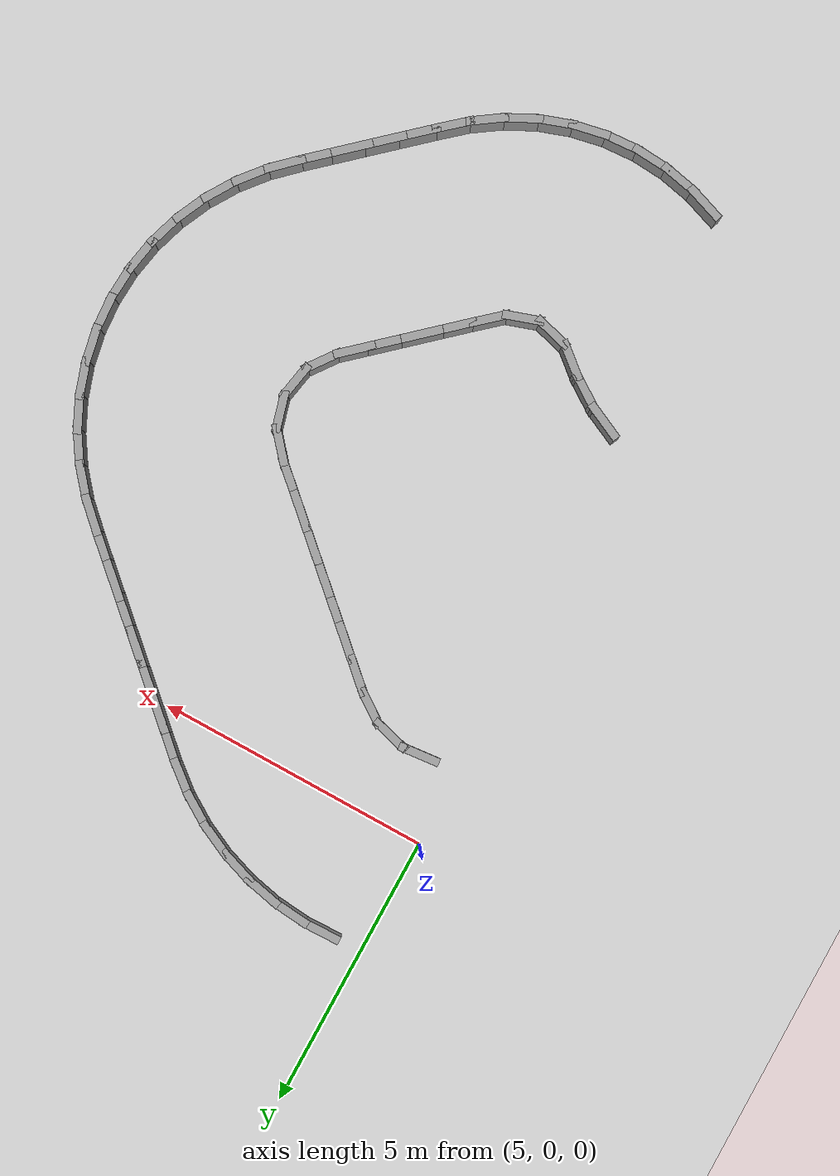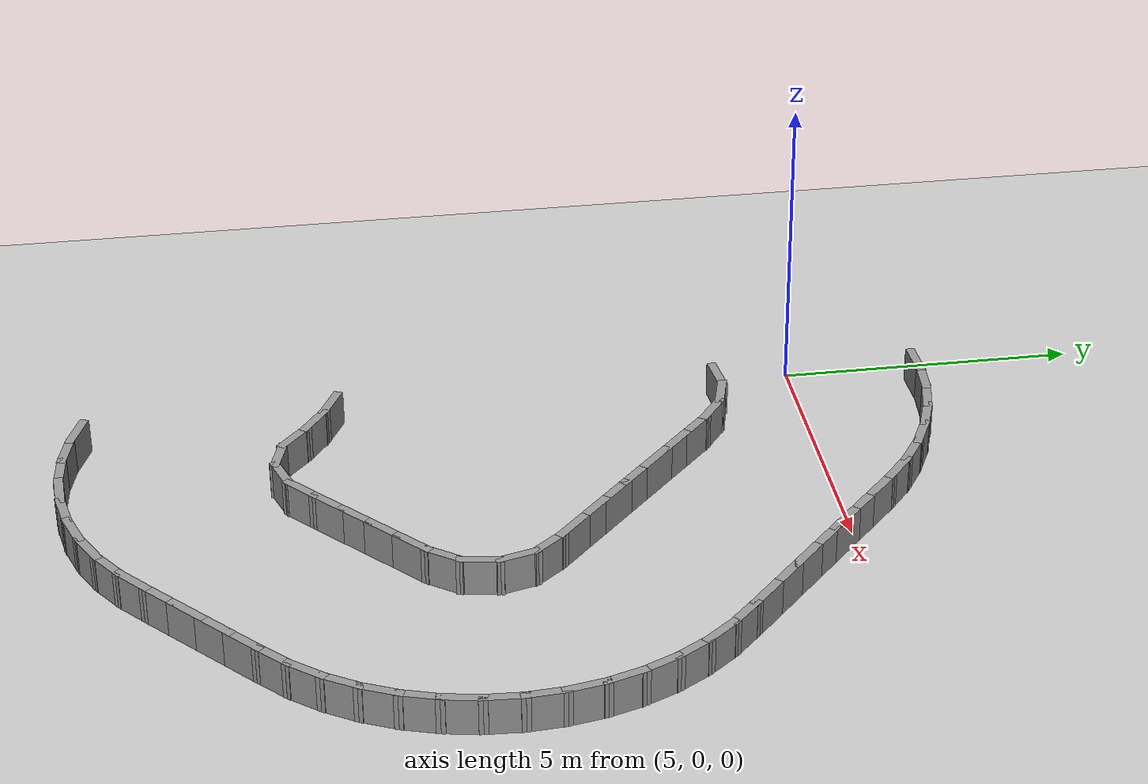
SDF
<sdf version="1.7">
 <world name="default">
  <model name="ground_plane">
   <static>1</static>
   <link name="link">
    <collision name="collision">
     <geometry><plane><normal>0 0 1</normal><size>100 100</size></plane></geometry>
     <surface><friction><ode><mu>100</mu><mu2>50</mu2></ode></friction></surface>
    </collision>
    <visual name="visual">
     <cast_shadows>0</cast_shadows>
     <geometry><plane><normal>0 0 1</normal><size>100 100</size></plane></geometry>
     <material>
      <script><uri>file://media/materials/scripts/gazebo.material</uri><name>Gazebo/Grey</name></script>
     </material>
    </visual>
   </link>
  </model>
  <model name="rand_turn_08">
   <link name="Wall_24">
    <collision name="Wall_24_Collision">
     <geometry><box><size>0.7496 0.1500 0.6000</size></box></geometry>
     <pose>0 0 0.3000 0 -0 0</pose>
    </collision>
    <visual name="Wall_24_Visual">
     <pose>0 0 0.3000 0 -0 0</pose>
     <geometry><box><size>0.7496 0.1500 0.6000</size></box></geometry>
     <material>
      <script><uri>file://media/materials/scripts/gazebo.material</uri><name>Gazebo/Grey</name></script>
      <ambient>1 1 1 1</ambient>
     </material>
    </visual>
    <pose>5.7935 2.0853 0 0 -0 0.02378</pose>
   </link>
   <link name="Wall_25">
    <collision name="Wall_25_Collision">
     <geometry><box><size>0.7496 0.1500 0.6000</size></box></geometry>
     <pose>0 0 0.3000 0 -0 0</pose>
    </collision>
    <visual name="Wall_25_Visual">
     <pose>0 0 0.3000 0 -0 0</pose>
     <geometry><box><size>0.7496 0.1500 0.6000</size></box></geometry>
     <material>
      <script><uri>file://media/materials/scripts/gazebo.material</uri><name>Gazebo/Grey</name></script>
      <ambient>1 1 1 1</ambient>
     </material>
    </visual>
    <pose>6.3917 2.0644 0 0 -0 -0.09374</pose>
   </link>
   <link name="Wall_26">
    <collision name="Wall_26_Collision">
     <geometry><box><size>0.7496 0.1500 0.6000</size></box></geometry>
     <pose>0 0 0.3000 0 -0 0</pose>
    </collision>
    <visual name="Wall_26_Visual">
     <pose>0 0 0.3000 0 -0 0</pose>
     <geometry><box><size>0.7496 0.1500 0.6000</size></box></geometry>
     <material>
      <script><uri>file://media/materials/scripts/gazebo.material</uri><name>Gazebo/Grey</name></script>
      <ambient>1 1 1 1</ambient>
     </material>
    </visual>
    <pose>6.9834 1.9735 0 0 -0 -0.21125</pose>
   </link>
   <link name="Wall_27">
    <collision name="Wall_27_Collision">
     <geometry><box><size>0.7496 0.1500 0.6000</size></box></geometry>
     <pose>0 0 0.3000 0 -0 0</pose>
    </collision>
    <visual name="Wall_27_Visual">
     <pose>0 0 0.3000 0 -0 0</pose>
     <geometry><box><size>0.7496 0.1500 0.6000</size></box></geometry>
     <material>
      <script><uri>file://media/materials/scripts/gazebo.material</uri><name>Gazebo/Grey</name></script>
      <ambient>1 1 1 1</ambient>
     </material>
    </visual>
    <pose>7.5602 1.8138 0 0 -0 -0.32876</pose>
   </link>
   <link name="Wall_28">
    <collision name="Wall_28_Collision">
     <geometry><box><size>0.7496 0.1500 0.6000</size></box></geometry>
     <pose>0 0 0.3000 0 -0 0</pose>
    </collision>
    <visual name="Wall_28_Visual">
     <pose>0 0 0.3000 0 -0 0</pose>
     <geometry><box><size>0.7496 0.1500 0.6000</size></box></geometry>
     <material>
      <script><uri>file://media/materials/scripts/gazebo.material</uri><name>Gazebo/Grey</name></script>
      <ambient>1 1 1 1</ambient>
     </material>
    </visual>
    <pose>8.1144 1.5876 0 0 -0 -0.44628</pose>
   </link>
   <link name="Wall_29">
    <collision name="Wall_29_Collision">
     <geometry><box><size>0.7496 0.1500 0.6000</size></box></geometry>
     <pose>0 0 0.3000 0 -0 0</pose>
    </collision>
    <visual name="Wall_29_Visual">
     <pose>0 0 0.3000 0 -0 0</pose>
     <geometry><box><size>0.7496 0.1500 0.6000</size></box></geometry>
     <material>
      <script><uri>file://media/materials/scripts/gazebo.material</uri><name>Gazebo/Grey</name></script>
      <ambient>1 1 1 1</ambient>
     </material>
    </visual>
    <pose>8.6383 1.2980 0 0 -0 -0.56379</pose>
   </link>
   <link name="Wall_30">
    <collision name="Wall_30_Collision">
     <geometry><box><size>0.7496 0.1500 0.6000</size></box></geometry>
     <pose>0 0 0.3000 0 -0 0</pose>
    </collision>
    <visual name="Wall_30_Visual">
     <pose>0 0 0.3000 0 -0 0</pose>
     <geometry><box><size>0.7496 0.1500 0.6000</size></box></geometry>
     <material>
      <script><uri>file://media/materials/scripts/gazebo.material</uri><name>Gazebo/Grey</name></script>
      <ambient>1 1 1 1</ambient>
     </material>
    </visual>
    <pose>9.1247 0.9491 0 0 -0 -0.68079</pose>
   </link>
   <link name="Wall_31">
    <collision name="Wall_31_Collision">
     <geometry><box><size>0.7500 0.1500 0.6000</size></box></geometry>
     <pose>0 0 0.3000 0 -0 0</pose>
    </collision>
    <visual name="Wall_31_Visual">
     <pose>0 0 0.3000 0 -0 0</pose>
     <geometry><box><size>0.7500 0.1500 0.6000</size></box></geometry>
     <material>
      <script><uri>file://media/materials/scripts/gazebo.material</uri><name>Gazebo/Grey</name></script>
      <ambient>1 1 1 1</ambient>
     </material>
    </visual>
    <pose>9.5798 0.5588 0 0 -0 -0.73675</pose>
   </link>
   <link name="Wall_32">
    <collision name="Wall_32_Collision">
     <geometry><box><size>0.7500 0.1500 0.6000</size></box></geometry>
     <pose>0 0 0.3000 0 -0 0</pose>
    </collision>
    <visual name="Wall_32_Visual">
     <pose>0 0 0.3000 0 -0 0</pose>
     <geometry><box><size>0.7500 0.1500 0.6000</size></box></geometry>
     <material>
      <script><uri>file://media/materials/scripts/gazebo.material</uri><name>Gazebo/Grey</name></script>
      <ambient>1 1 1 1</ambient>
     </material>
    </visual>
    <pose>10.0242 0.1556 0 0 -0 -0.73684</pose>
   </link>
   <link name="Wall_33">
    <collision name="Wall_33_Collision">
     <geometry><box><size>0.7500 0.1500 0.6000</size></box></geometry>
     <pose>0 0 0.3000 0 -0 0</pose>
    </collision>
    <visual name="Wall_33_Visual">
     <pose>0 0 0.3000 0 -0 0</pose>
     <geometry><box><size>0.7500 0.1500 0.6000</size></box></geometry>
     <material>
      <script><uri>file://media/materials/scripts/gazebo.material</uri><name>Gazebo/Grey</name></script>
      <ambient>1 1 1 1</ambient>
     </material>
    </visual>
    <pose>10.4686 -0.2475 0 0 -0 -0.73684</pose>
   </link>
   <link name="Wall_34">
    <collision name="Wall_34_Collision">
     <geometry><box><size>0.7500 0.1500 0.6000</size></box></geometry>
     <pose>0 0 0.3000 0 -0 0</pose>
    </collision>
    <visual name="Wall_34_Visual">
     <pose>0 0 0.3000 0 -0 0</pose>
     <geometry><box><size>0.7500 0.1500 0.6000</size></box></geometry>
     <material>
      <script><uri>file://media/materials/scripts/gazebo.material</uri><name>Gazebo/Grey</name></script>
      <ambient>1 1 1 1</ambient>
     </material>
    </visual>
    <pose>10.9129 -0.6507 0 0 -0 -0.73684</pose>
   </link>
   <link name="Wall_35">
    <collision name="Wall_35_Collision">
     <geometry><box><size>0.7500 0.1500 0.6000</size></box></geometry>
     <pose>0 0 0.3000 0 -0 0</pose>
    </collision>
    <visual name="Wall_35_Visual">
     <pose>0 0 0.3000 0 -0 0</pose>
     <geometry><box><size>0.7500 0.1500 0.6000</size></box></geometry>
     <material>
      <script><uri>file://media/materials/scripts/gazebo.material</uri><name>Gazebo/Grey</name></script>
      <ambient>1 1 1 1</ambient>
     </material>
    </visual>
    <pose>11.3573 -1.0539 0 0 -0 -0.73684</pose>
   </link>
   <link name="Wall_36">
    <collision name="Wall_36_Collision">
     <geometry><box><size>0.7500 0.1500 0.6000</size></box></geometry>
     <pose>0 0 0.3000 0 -0 0</pose>
    </collision>
    <visual name="Wall_36_Visual">
     <pose>0 0 0.3000 0 -0 0</pose>
     <geometry><box><size>0.7500 0.1500 0.6000</size></box></geometry>
     <material>
      <script><uri>file://media/materials/scripts/gazebo.material</uri><name>Gazebo/Grey</name></script>
      <ambient>1 1 1 1</ambient>
     </material>
    </visual>
    <pose>11.8016 -1.4570 0 0 -0 -0.73684</pose>
   </link>
   <link name="Wall_37">
    <collision name="Wall_37_Collision">
     <geometry><box><size>0.7500 0.1500 0.6000</size></box></geometry>
     <pose>0 0 0.3000 0 -0 0</pose>
    </collision>
    <visual name="Wall_37_Visual">
     <pose>0 0 0.3000 0 -0 0</pose>
     <geometry><box><size>0.7500 0.1500 0.6000</size></box></geometry>
     <material>
      <script><uri>file://media/materials/scripts/gazebo.material</uri><name>Gazebo/Grey</name></script>
      <ambient>1 1 1 1</ambient>
     </material>
    </visual>
    <pose>12.2460 -1.8602 0 0 -0 -0.73684</pose>
   </link>
   <link name="Wall_38">
    <collision name="Wall_38_Collision">
     <geometry><box><size>0.7498 0.1500 0.6000</size></box></geometry>
     <pose>0 0 0.3000 0 -0 0</pose>
    </collision>
    <visual name="Wall_38_Visual">
     <pose>0 0 0.3000 0 -0 0</pose>
     <geometry><box><size>0.7498 0.1500 0.6000</size></box></geometry>
     <material>
      <script><uri>file://media/materials/scripts/gazebo.material</uri><name>Gazebo/Grey</name></script>
      <ambient>1 1 1 1</ambient>
     </material>
    </visual>
    <pose>12.6856 -2.2684 0 0 -0 -0.75972</pose>
   </link>
   <link name="Wall_39">
    <collision name="Wall_39_Collision">
     <geometry><box><size>0.7496 0.1500 0.6000</size></box></geometry>
     <pose>0 0 0.3000 0 -0 0</pose>
    </collision>
    <visual name="Wall_39_Visual">
     <pose>0 0 0.3000 0 -0 0</pose>
     <geometry><box><size>0.7496 0.1500 0.6000</size></box></geometry>
     <material>
      <script><uri>file://media/materials/scripts/gazebo.material</uri><name>Gazebo/Grey</name></script>
      <ambient>1 1 1 1</ambient>
     </material>
    </visual>
    <pose>13.0955 -2.7048 0 0 -0 -0.87392</pose>
   </link>
   <link name="Wall_40">
    <collision name="Wall_40_Collision">
     <geometry><box><size>0.7496 0.1500 0.6000</size></box></geometry>
     <pose>0 0 0.3000 0 -0 0</pose>
    </collision>
    <visual name="Wall_40_Visual">
     <pose>0 0 0.3000 0 -0 0</pose>
     <geometry><box><size>0.7496 0.1500 0.6000</size></box></geometry>
     <material>
      <script><uri>file://media/materials/scripts/gazebo.material</uri><name>Gazebo/Grey</name></script>
      <ambient>1 1 1 1</ambient>
     </material>
    </visual>
    <pose>13.4498 -3.1870 0 0 -0 -1.00021</pose>
   </link>
   <link name="Wall_41">
    <collision name="Wall_41_Collision">
     <geometry><box><size>0.7496 0.1500 0.6000</size></box></geometry>
     <pose>0 0 0.3000 0 -0 0</pose>
    </collision>
    <visual name="Wall_41_Visual">
     <pose>0 0 0.3000 0 -0 0</pose>
     <geometry><box><size>0.7496 0.1500 0.6000</size></box></geometry>
     <material>
      <script><uri>file://media/materials/scripts/gazebo.material</uri><name>Gazebo/Grey</name></script>
      <ambient>1 1 1 1</ambient>
     </material>
    </visual>
    <pose>13.7405 -3.7101 0 0 -0 -1.12687</pose>
   </link>
   <link name="Wall_42">
    <collision name="Wall_42_Collision">
     <geometry><box><size>0.7496 0.1500 0.6000</size></box></geometry>
     <pose>0 0 0.3000 0 -0 0</pose>
    </collision>
    <visual name="Wall_42_Visual">
     <pose>0 0 0.3000 0 -0 0</pose>
     <geometry><box><size>0.7496 0.1500 0.6000</size></box></geometry>
     <material>
      <script><uri>file://media/materials/scripts/gazebo.material</uri><name>Gazebo/Grey</name></script>
      <ambient>1 1 1 1</ambient>
     </material>
    </visual>
    <pose>13.9630 -4.2655 0 0 -0 -1.25264</pose>
   </link>
   <link name="Wall_43">
    <collision name="Wall_43_Collision">
     <geometry><box><size>0.7495 0.1500 0.6000</size></box></geometry>
     <pose>0 0 0.3000 0 -0 0</pose>
    </collision>
    <visual name="Wall_43_Visual">
     <pose>0 0 0.3000 0 -0 0</pose>
     <geometry><box><size>0.7495 0.1500 0.6000</size></box></geometry>
     <material>
      <script><uri>file://media/materials/scripts/gazebo.material</uri><name>Gazebo/Grey</name></script>
      <ambient>1 1 1 1</ambient>
     </material>
    </visual>
    <pose>14.1141 -4.8445 0 0 -0 -1.37841</pose>
   </link>
   <link name="Wall_44">
    <collision name="Wall_44_Collision">
     <geometry><box><size>0.7496 0.1500 0.6000</size></box></geometry>
     <pose>0 0 0.3000 0 -0 0</pose>
    </collision>
    <visual name="Wall_44_Visual">
     <pose>0 0 0.3000 0 -0 0</pose>
     <geometry><box><size>0.7496 0.1500 0.6000</size></box></geometry>
     <material>
      <script><uri>file://media/materials/scripts/gazebo.material</uri><name>Gazebo/Grey</name></script>
      <ambient>1 1 1 1</ambient>
     </material>
    </visual>
    <pose>14.1914 -5.4379 0 0 -0 -1.50417</pose>
   </link>
   <link name="Wall_45">
    <collision name="Wall_45_Collision">
     <geometry><box><size>0.7496 0.1500 0.6000</size></box></geometry>
     <pose>0 0 0.3000 0 -0 0</pose>
    </collision>
    <visual name="Wall_45_Visual">
     <pose>0 0 0.3000 0 -0 0</pose>
     <geometry><box><size>0.7496 0.1500 0.6000</size></box></geometry>
     <material>
      <script><uri>file://media/materials/scripts/gazebo.material</uri><name>Gazebo/Grey</name></script>
      <ambient>1 1 1 1</ambient>
     </material>
    </visual>
    <pose>14.1936 -6.0362 0 0 -0 -1.62994</pose>
   </link>
   <link name="Wall_46">
    <collision name="Wall_46_Collision">
     <geometry><box><size>0.7496 0.1500 0.6000</size></box></geometry>
     <pose>0 0 0.3000 0 -0 0</pose>
    </collision>
    <visual name="Wall_46_Visual">
     <pose>0 0 0.3000 0 -0 0</pose>
     <geometry><box><size>0.7496 0.1500 0.6000</size></box></geometry>
     <material>
      <script><uri>file://media/materials/scripts/gazebo.material</uri><name>Gazebo/Grey</name></script>
      <ambient>1 1 1 1</ambient>
     </material>
    </visual>
    <pose>14.1207 -6.6302 0 0 -0 -1.75612</pose>
   </link>
   <link name="Wall_47">
    <collision name="Wall_47_Collision">
     <geometry><box><size>0.7496 0.1500 0.6000</size></box></geometry>
     <pose>0 0 0.3000 0 -0 0</pose>
    </collision>
    <visual name="Wall_47_Visual">
     <pose>0 0 0.3000 0 -0 0</pose>
     <geometry><box><size>0.7496 0.1500 0.6000</size></box></geometry>
     <material>
      <script><uri>file://media/materials/scripts/gazebo.material</uri><name>Gazebo/Grey</name></script>
      <ambient>1 1 1 1</ambient>
     </material>
    </visual>
    <pose>13.9734 -7.2102 0 0 -0 -1.88289</pose>
   </link>
   <link name="Wall_48">
    <collision name="Wall_48_Collision">
     <geometry><box><size>0.7496 0.1500 0.6000</size></box></geometry>
     <pose>0 0 0.3000 0 -0 0</pose>
    </collision>
    <visual name="Wall_48_Visual">
     <pose>0 0 0.3000 0 -0 0</pose>
     <geometry><box><size>0.7496 0.1500 0.6000</size></box></geometry>
     <material>
      <script><uri>file://media/materials/scripts/gazebo.material</uri><name>Gazebo/Grey</name></script>
      <ambient>1 1 1 1</ambient>
     </material>
    </visual>
    <pose>13.7542 -7.7670 0 0 -0 -2.00865</pose>
   </link>
   <link name="Wall_49">
    <collision name="Wall_49_Collision">
     <geometry><box><size>0.7495 0.1500 0.6000</size></box></geometry>
     <pose>0 0 0.3000 0 -0 0</pose>
    </collision>
    <visual name="Wall_49_Visual">
     <pose>0 0 0.3000 0 -0 0</pose>
     <geometry><box><size>0.7495 0.1500 0.6000</size></box></geometry>
     <material>
      <script><uri>file://media/materials/scripts/gazebo.material</uri><name>Gazebo/Grey</name></script>
      <ambient>1 1 1 1</ambient>
     </material>
    </visual>
    <pose>13.4670 -8.2919 0 0 -0 -2.13442</pose>
   </link>
   <link name="Wall_50">
    <collision name="Wall_50_Collision">
     <geometry><box><size>0.7496 0.1500 0.6000</size></box></geometry>
     <pose>0 0 0.3000 0 -0 0</pose>
    </collision>
    <visual name="Wall_50_Visual">
     <pose>0 0 0.3000 0 -0 0</pose>
     <geometry><box><size>0.7496 0.1500 0.6000</size></box></geometry>
     <material>
      <script><uri>file://media/materials/scripts/gazebo.material</uri><name>Gazebo/Grey</name></script>
      <ambient>1 1 1 1</ambient>
     </material>
    </visual>
    <pose>13.1161 -8.7766 0 0 -0 -2.26019</pose>
   </link>
   <link name="Wall_51">
    <collision name="Wall_51_Collision">
     <geometry><box><size>0.7497 0.1500 0.6000</size></box></geometry>
     <pose>0 0 0.3000 0 -0 0</pose>
    </collision>
    <visual name="Wall_51_Visual">
     <pose>0 0 0.3000 0 -0 0</pose>
     <geometry><box><size>0.7497 0.1500 0.6000</size></box></geometry>
     <material>
      <script><uri>file://media/materials/scripts/gazebo.material</uri><name>Gazebo/Grey</name></script>
      <ambient>1 1 1 1</ambient>
     </material>
    </visual>
    <pose>12.7081 -9.2145 0 0 -0 -2.38179</pose>
   </link>
   <link name="Wall_52">
    <collision name="Wall_52_Collision">
     <geometry><box><size>0.7500 0.1500 0.6000</size></box></geometry>
     <pose>0 0 0.3000 0 -0 0</pose>
    </collision>
    <visual name="Wall_52_Visual">
     <pose>0 0 0.3000 0 -0 0</pose>
     <geometry><box><size>0.7500 0.1500 0.6000</size></box></geometry>
     <material>
      <script><uri>file://media/materials/scripts/gazebo.material</uri><name>Gazebo/Grey</name></script>
      <ambient>1 1 1 1</ambient>
     </material>
    </visual>
    <pose>12.2674 -9.6214 0 0 -0 -2.41018</pose>
   </link>
   <link name="Wall_53">
    <collision name="Wall_53_Collision">
     <geometry><box><size>0.7500 0.1500 0.6000</size></box></geometry>
     <pose>0 0 0.3000 0 -0 0</pose>
    </collision>
    <visual name="Wall_53_Visual">
     <pose>0 0 0.3000 0 -0 0</pose>
     <geometry><box><size>0.7500 0.1500 0.6000</size></box></geometry>
     <material>
      <script><uri>file://media/materials/scripts/gazebo.material</uri><name>Gazebo/Grey</name></script>
      <ambient>1 1 1 1</ambient>
     </material>
    </visual>
    <pose>11.8209 -10.0221 0 0 -0 -2.41018</pose>
   </link>
   <link name="Wall_54">
    <collision name="Wall_54_Collision">
     <geometry><box><size>0.7500 0.1500 0.6000</size></box></geometry>
     <pose>0 0 0.3000 0 -0 0</pose>
    </collision>
    <visual name="Wall_54_Visual">
     <pose>0 0 0.3000 0 -0 0</pose>
     <geometry><box><size>0.7500 0.1500 0.6000</size></box></geometry>
     <material>
      <script><uri>file://media/materials/scripts/gazebo.material</uri><name>Gazebo/Grey</name></script>
      <ambient>1 1 1 1</ambient>
     </material>
    </visual>
    <pose>11.3743 -10.4229 0 0 -0 -2.41018</pose>
   </link>
   <link name="Wall_55">
    <collision name="Wall_55_Collision">
     <geometry><box><size>0.7500 0.1500 0.6000</size></box></geometry>
     <pose>0 0 0.3000 0 -0 0</pose>
    </collision>
    <visual name="Wall_55_Visual">
     <pose>0 0 0.3000 0 -0 0</pose>
     <geometry><box><size>0.7500 0.1500 0.6000</size></box></geometry>
     <material>
      <script><uri>file://media/materials/scripts/gazebo.material</uri><name>Gazebo/Grey</name></script>
      <ambient>1 1 1 1</ambient>
     </material>
    </visual>
    <pose>10.9278 -10.8236 0 0 -0 -2.41018</pose>
   </link>
   <link name="Wall_56">
    <collision name="Wall_56_Collision">
     <geometry><box><size>0.7499 0.1500 0.6000</size></box></geometry>
     <pose>0 0 0.3000 0 -0 0</pose>
    </collision>
    <visual name="Wall_56_Visual">
     <pose>0 0 0.3000 0 -0 0</pose>
     <geometry><box><size>0.7499 0.1500 0.6000</size></box></geometry>
     <material>
      <script><uri>file://media/materials/scripts/gazebo.material</uri><name>Gazebo/Grey</name></script>
      <ambient>1 1 1 1</ambient>
     </material>
    </visual>
    <pose>10.4782 -11.2208 0 0 -0 -2.42583</pose>
   </link>
   <link name="Wall_57">
    <collision name="Wall_57_Collision">
     <geometry><box><size>0.7495 0.1500 0.6000</size></box></geometry>
     <pose>0 0 0.3000 0 -0 0</pose>
    </collision>
    <visual name="Wall_57_Visual">
     <pose>0 0 0.3000 0 -0 0</pose>
     <geometry><box><size>0.7495 0.1500 0.6000</size></box></geometry>
     <material>
      <script><uri>file://media/materials/scripts/gazebo.material</uri><name>Gazebo/Grey</name></script>
      <ambient>1 1 1 1</ambient>
     </material>
    </visual>
    <pose>10.0047 -11.5872 0 0 -0 -2.54043</pose>
   </link>
   <link name="Wall_58">
    <collision name="Wall_58_Collision">
     <geometry><box><size>0.7495 0.1500 0.6000</size></box></geometry>
     <pose>0 0 0.3000 0 -0 0</pose>
    </collision>
    <visual name="Wall_58_Visual">
     <pose>0 0 0.3000 0 -0 0</pose>
     <geometry><box><size>0.7495 0.1500 0.6000</size></box></geometry>
     <material>
      <script><uri>file://media/materials/scripts/gazebo.material</uri><name>Gazebo/Grey</name></script>
      <ambient>1 1 1 1</ambient>
     </material>
    </visual>
    <pose>9.4899 -11.8918 0 0 -0 -2.67397</pose>
   </link>
   <link name="Wall_59">
    <collision name="Wall_59_Collision">
     <geometry><box><size>0.7495 0.1500 0.6000</size></box></geometry>
     <pose>0 0 0.3000 0 -0 0</pose>
    </collision>
    <visual name="Wall_59_Visual">
     <pose>0 0 0.3000 0 -0 0</pose>
     <geometry><box><size>0.7495 0.1500 0.6000</size></box></geometry>
     <material>
      <script><uri>file://media/materials/scripts/gazebo.material</uri><name>Gazebo/Grey</name></script>
      <ambient>1 1 1 1</ambient>
     </material>
    </visual>
    <pose>8.9389 -12.1247 0 0 -0 -2.80956</pose>
   </link>
   <link name="Wall_60">
    <collision name="Wall_60_Collision">
     <geometry><box><size>0.7495 0.1500 0.6000</size></box></geometry>
     <pose>0 0 0.3000 0 -0 0</pose>
    </collision>
    <visual name="Wall_60_Visual">
     <pose>0 0 0.3000 0 -0 0</pose>
     <geometry><box><size>0.7495 0.1500 0.6000</size></box></geometry>
     <material>
      <script><uri>file://media/materials/scripts/gazebo.material</uri><name>Gazebo/Grey</name></script>
      <ambient>1 1 1 1</ambient>
     </material>
    </visual>
    <pose>8.3616 -12.2812 0 0 -0 -2.94410</pose>
   </link>
   <link name="Wall_61">
    <collision name="Wall_61_Collision">
     <geometry><box><size>0.7495 0.1500 0.6000</size></box></geometry>
     <pose>0 0 0.3000 0 -0 0</pose>
    </collision>
    <visual name="Wall_61_Visual">
     <pose>0 0 0.3000 0 -0 0</pose>
     <geometry><box><size>0.7495 0.1500 0.6000</size></box></geometry>
     <material>
      <script><uri>file://media/materials/scripts/gazebo.material</uri><name>Gazebo/Grey</name></script>
      <ambient>1 1 1 1</ambient>
     </material>
    </visual>
    <pose>7.7686 -12.3592 0 0 -0 -3.07764</pose>
   </link>
   <link name="Wall_62">
    <collision name="Wall_62_Collision">
     <geometry><box><size>0.7495 0.1500 0.6000</size></box></geometry>
     <pose>0 0 0.3000 0 -0 0</pose>
    </collision>
    <visual name="Wall_62_Visual">
     <pose>0 0 0.3000 0 -0 0</pose>
     <geometry><box><size>0.7495 0.1500 0.6000</size></box></geometry>
     <material>
      <script><uri>file://media/materials/scripts/gazebo.material</uri><name>Gazebo/Grey</name></script>
      <ambient>1 1 1 1</ambient>
     </material>
    </visual>
    <pose>7.1704 -12.3571 0 0 -0 3.07064</pose>
   </link>
   <link name="Wall_63">
    <collision name="Wall_63_Collision">
     <geometry><box><size>0.7495 0.1500 0.6000</size></box></geometry>
     <pose>0 0 0.3000 0 -0 0</pose>
    </collision>
    <visual name="Wall_63_Visual">
     <pose>0 0 0.3000 0 -0 0</pose>
     <geometry><box><size>0.7495 0.1500 0.6000</size></box></geometry>
     <material>
      <script><uri>file://media/materials/scripts/gazebo.material</uri><name>Gazebo/Grey</name></script>
      <ambient>1 1 1 1</ambient>
     </material>
    </visual>
    <pose>6.5780 -12.2745 0 0 -0 2.93542</pose>
   </link>
   <link name="Wall_64">
    <collision name="Wall_64_Collision">
     <geometry><box><size>0.7495 0.1500 0.6000</size></box></geometry>
     <pose>0 0 0.3000 0 -0 0</pose>
    </collision>
    <visual name="Wall_64_Visual">
     <pose>0 0 0.3000 0 -0 0</pose>
     <geometry><box><size>0.7495 0.1500 0.6000</size></box></geometry>
     <material>
      <script><uri>file://media/materials/scripts/gazebo.material</uri><name>Gazebo/Grey</name></script>
      <ambient>1 1 1 1</ambient>
     </material>
    </visual>
    <pose>6.0020 -12.1132 0 0 -0 2.80188</pose>
   </link>
   <link name="Wall_93">
    <collision name="Wall_93_Collision">
     <geometry><box><size>0.7468 0.1500 0.6000</size></box></geometry>
     <pose>0 0 0.3000 0 -0 0</pose>
    </collision>
    <visual name="Wall_93_Visual">
     <pose>0 0 0.3000 0 -0 0</pose>
     <geometry><box><size>0.7468 0.1500 0.6000</size></box></geometry>
     <material>
      <script><uri>file://media/materials/scripts/gazebo.material</uri><name>Gazebo/Grey</name></script>
      <ambient>1 1 1 1</ambient>
     </material>
    </visual>
    <pose>5.7547 -1.3750 0 0 -0 0.09742</pose>
   </link>
   <link name="Wall_94">
    <collision name="Wall_94_Collision">
     <geometry><box><size>0.7467 0.1500 0.6000</size></box></geometry>
     <pose>0 0 0.3000 0 -0 0</pose>
    </collision>
    <visual name="Wall_94_Visual">
     <pose>0 0 0.3000 0 -0 0</pose>
     <geometry><box><size>0.7467 0.1500 0.6000</size></box></geometry>
     <material>
      <script><uri>file://media/materials/scripts/gazebo.material</uri><name>Gazebo/Grey</name></script>
      <ambient>1 1 1 1</ambient>
     </material>
    </visual>
    <pose>6.3399 -1.4232 0 0 -0 -0.26191</pose>
   </link>
   <link name="Wall_95">
    <collision name="Wall_95_Collision">
     <geometry><box><size>0.7472 0.1500 0.6000</size></box></geometry>
     <pose>0 0 0.3000 0 -0 0</pose>
    </collision>
    <visual name="Wall_95_Visual">
     <pose>0 0 0.3000 0 -0 0</pose>
     <geometry><box><size>0.7472 0.1500 0.6000</size></box></geometry>
     <material>
      <script><uri>file://media/materials/scripts/gazebo.material</uri><name>Gazebo/Grey</name></script>
      <ambient>1 1 1 1</ambient>
     </material>
    </visual>
    <pose>6.8719 -1.6729 0 0 -0 -0.61561</pose>
   </link>
   <link name="Wall_96">
    <collision name="Wall_96_Collision">
     <geometry><box><size>0.7500 0.1500 0.6000</size></box></geometry>
     <pose>0 0 0.3000 0 -0 0</pose>
    </collision>
    <visual name="Wall_96_Visual">
     <pose>0 0 0.3000 0 -0 0</pose>
     <geometry><box><size>0.7500 0.1500 0.6000</size></box></geometry>
     <material>
      <script><uri>file://media/materials/scripts/gazebo.material</uri><name>Gazebo/Grey</name></script>
      <ambient>1 1 1 1</ambient>
     </material>
    </visual>
    <pose>7.3379 -2.0469 0 0 -0 -0.73684</pose>
   </link>
   <link name="Wall_97">
    <collision name="Wall_97_Collision">
     <geometry><box><size>0.7500 0.1500 0.6000</size></box></geometry>
     <pose>0 0 0.3000 0 -0 0</pose>
    </collision>
    <visual name="Wall_97_Visual">
     <pose>0 0 0.3000 0 -0 0</pose>
     <geometry><box><size>0.7500 0.1500 0.6000</size></box></geometry>
     <material>
      <script><uri>file://media/materials/scripts/gazebo.material</uri><name>Gazebo/Grey</name></script>
      <ambient>1 1 1 1</ambient>
     </material>
    </visual>
    <pose>7.7822 -2.4501 0 0 -0 -0.73684</pose>
   </link>
   <link name="Wall_98">
    <collision name="Wall_98_Collision">
     <geometry><box><size>0.7500 0.1500 0.6000</size></box></geometry>
     <pose>0 0 0.3000 0 -0 0</pose>
    </collision>
    <visual name="Wall_98_Visual">
     <pose>0 0 0.3000 0 -0 0</pose>
     <geometry><box><size>0.7500 0.1500 0.6000</size></box></geometry>
     <material>
      <script><uri>file://media/materials/scripts/gazebo.material</uri><name>Gazebo/Grey</name></script>
      <ambient>1 1 1 1</ambient>
     </material>
    </visual>
    <pose>8.2266 -2.8532 0 0 -0 -0.73684</pose>
   </link>
   <link name="Wall_99">
    <collision name="Wall_99_Collision">
     <geometry><box><size>0.7500 0.1500 0.6000</size></box></geometry>
     <pose>0 0 0.3000 0 -0 0</pose>
    </collision>
    <visual name="Wall_99_Visual">
     <pose>0 0 0.3000 0 -0 0</pose>
     <geometry><box><size>0.7500 0.1500 0.6000</size></box></geometry>
     <material>
      <script><uri>file://media/materials/scripts/gazebo.material</uri><name>Gazebo/Grey</name></script>
      <ambient>1 1 1 1</ambient>
     </material>
    </visual>
    <pose>8.6709 -3.2564 0 0 -0 -0.73684</pose>
   </link>
   <link name="Wall_100">
    <collision name="Wall_100_Collision">
     <geometry><box><size>0.7500 0.1500 0.6000</size></box></geometry>
     <pose>0 0 0.3000 0 -0 0</pose>
    </collision>
    <visual name="Wall_100_Visual">
     <pose>0 0 0.3000 0 -0 0</pose>
     <geometry><box><size>0.7500 0.1500 0.6000</size></box></geometry>
     <material>
      <script><uri>file://media/materials/scripts/gazebo.material</uri><name>Gazebo/Grey</name></script>
      <ambient>1 1 1 1</ambient>
     </material>
    </visual>
    <pose>9.1153 -3.6596 0 0 -0 -0.73684</pose>
   </link>
   <link name="Wall_101">
    <collision name="Wall_101_Collision">
     <geometry><box><size>0.7500 0.1500 0.6000</size></box></geometry>
     <pose>0 0 0.3000 0 -0 0</pose>
    </collision>
    <visual name="Wall_101_Visual">
     <pose>0 0 0.3000 0 -0 0</pose>
     <geometry><box><size>0.7500 0.1500 0.6000</size></box></geometry>
     <material>
      <script><uri>file://media/materials/scripts/gazebo.material</uri><name>Gazebo/Grey</name></script>
      <ambient>1 1 1 1</ambient>
     </material>
    </visual>
    <pose>9.5596 -4.0628 0 0 -0 -0.73684</pose>
   </link>
   <link name="Wall_102">
    <collision name="Wall_102_Collision">
     <geometry><box><size>0.7500 0.1500 0.6000</size></box></geometry>
     <pose>0 0 0.3000 0 -0 0</pose>
    </collision>
    <visual name="Wall_102_Visual">
     <pose>0 0 0.3000 0 -0 0</pose>
     <geometry><box><size>0.7500 0.1500 0.6000</size></box></geometry>
     <material>
      <script><uri>file://media/materials/scripts/gazebo.material</uri><name>Gazebo/Grey</name></script>
      <ambient>1 1 1 1</ambient>
     </material>
    </visual>
    <pose>10.0040 -4.4659 0 0 -0 -0.73684</pose>
   </link>
   <link name="Wall_103">
    <collision name="Wall_103_Collision">
     <geometry><box><size>0.7463 0.1500 0.6000</size></box></geometry>
     <pose>0 0 0.3000 0 -0 0</pose>
    </collision>
    <visual name="Wall_103_Visual">
     <pose>0 0 0.3000 0 -0 0</pose>
     <geometry><box><size>0.7463 0.1500 0.6000</size></box></geometry>
     <material>
      <script><uri>file://media/materials/scripts/gazebo.material</uri><name>Gazebo/Grey</name></script>
      <ambient>1 1 1 1</ambient>
     </material>
    </visual>
    <pose>10.4203 -4.8938 0 0 -0 -0.86166</pose>
   </link>
   <link name="Wall_104">
    <collision name="Wall_104_Collision">
     <geometry><box><size>0.7449 0.1500 0.6000</size></box></geometry>
     <pose>0 0 0.3000 0 -0 0</pose>
    </collision>
    <visual name="Wall_104_Visual">
     <pose>0 0 0.3000 0 -0 0</pose>
     <geometry><box><size>0.7449 0.1500 0.6000</size></box></geometry>
     <material>
      <script><uri>file://media/materials/scripts/gazebo.material</uri><name>Gazebo/Grey</name></script>
      <ambient>1 1 1 1</ambient>
     </material>
    </visual>
    <pose>10.6944 -5.4066 0 0 -0 -1.29886</pose>
   </link>
   <link name="Wall_105">
    <collision name="Wall_105_Collision">
     <geometry><box><size>0.7449 0.1500 0.6000</size></box></geometry>
     <pose>0 0 0.3000 0 -0 0</pose>
    </collision>
    <visual name="Wall_105_Visual">
     <pose>0 0 0.3000 0 -0 0</pose>
     <geometry><box><size>0.7449 0.1500 0.6000</size></box></geometry>
     <material>
      <script><uri>file://media/materials/scripts/gazebo.material</uri><name>Gazebo/Grey</name></script>
      <ambient>1 1 1 1</ambient>
     </material>
    </visual>
    <pose>10.7207 -5.9857 0 0 -0 -1.75183</pose>
   </link>
   <link name="Wall_106">
    <collision name="Wall_106_Collision">
     <geometry><box><size>0.7447 0.1500 0.6000</size></box></geometry>
     <pose>0 0 0.3000 0 -0 0</pose>
    </collision>
    <visual name="Wall_106_Visual">
     <pose>0 0 0.3000 0 -0 0</pose>
     <geometry><box><size>0.7447 0.1500 0.6000</size></box></geometry>
     <material>
      <script><uri>file://media/materials/scripts/gazebo.material</uri><name>Gazebo/Grey</name></script>
      <ambient>1 1 1 1</ambient>
     </material>
    </visual>
    <pose>10.4907 -6.5176 0 0 -0 -2.20592</pose>
   </link>
   <link name="Wall_107">
    <collision name="Wall_107_Collision">
     <geometry><box><size>0.7500 0.1500 0.6000</size></box></geometry>
     <pose>0 0 0.3000 0 -0 0</pose>
    </collision>
    <visual name="Wall_107_Visual">
     <pose>0 0 0.3000 0 -0 0</pose>
     <geometry><box><size>0.7500 0.1500 0.6000</size></box></geometry>
     <material>
      <script><uri>file://media/materials/scripts/gazebo.material</uri><name>Gazebo/Grey</name></script>
      <ambient>1 1 1 1</ambient>
     </material>
    </visual>
    <pose>10.0911 -6.9573 0 0 -0 -2.41018</pose>
   </link>
   <link name="Wall_108">
    <collision name="Wall_108_Collision">
     <geometry><box><size>0.7500 0.1500 0.6000</size></box></geometry>
     <pose>0 0 0.3000 0 -0 0</pose>
    </collision>
    <visual name="Wall_108_Visual">
     <pose>0 0 0.3000 0 -0 0</pose>
     <geometry><box><size>0.7500 0.1500 0.6000</size></box></geometry>
     <material>
      <script><uri>file://media/materials/scripts/gazebo.material</uri><name>Gazebo/Grey</name></script>
      <ambient>1 1 1 1</ambient>
     </material>
    </visual>
    <pose>9.6445 -7.3581 0 0 -0 -2.41018</pose>
   </link>
   <link name="Wall_109">
    <collision name="Wall_109_Collision">
     <geometry><box><size>0.7500 0.1500 0.6000</size></box></geometry>
     <pose>0 0 0.3000 0 -0 0</pose>
    </collision>
    <visual name="Wall_109_Visual">
     <pose>0 0 0.3000 0 -0 0</pose>
     <geometry><box><size>0.7500 0.1500 0.6000</size></box></geometry>
     <material>
      <script><uri>file://media/materials/scripts/gazebo.material</uri><name>Gazebo/Grey</name></script>
      <ambient>1 1 1 1</ambient>
     </material>
    </visual>
    <pose>9.1980 -7.7588 0 0 -0 -2.41018</pose>
   </link>
   <link name="Wall_110">
    <collision name="Wall_110_Collision">
     <geometry><box><size>0.7500 0.1500 0.6000</size></box></geometry>
     <pose>0 0 0.3000 0 -0 0</pose>
    </collision>
    <visual name="Wall_110_Visual">
     <pose>0 0 0.3000 0 -0 0</pose>
     <geometry><box><size>0.7500 0.1500 0.6000</size></box></geometry>
     <material>
      <script><uri>file://media/materials/scripts/gazebo.material</uri><name>Gazebo/Grey</name></script>
      <ambient>1 1 1 1</ambient>
     </material>
    </visual>
    <pose>8.7515 -8.1596 0 0 -0 -2.41018</pose>
   </link>
   <link name="Wall_111">
    <collision name="Wall_111_Collision">
     <geometry><box><size>0.7498 0.1500 0.6000</size></box></geometry>
     <pose>0 0 0.3000 0 -0 0</pose>
    </collision>
    <visual name="Wall_111_Visual">
     <pose>0 0 0.3000 0 -0 0</pose>
     <geometry><box><size>0.7498 0.1500 0.6000</size></box></geometry>
     <material>
      <script><uri>file://media/materials/scripts/gazebo.material</uri><name>Gazebo/Grey</name></script>
      <ambient>1 1 1 1</ambient>
     </material>
    </visual>
    <pose>8.3026 -8.5576 0 0 -0 -2.42217</pose>
   </link>
   <link name="Wall_112">
    <collision name="Wall_112_Collision">
     <geometry><box><size>0.7414 0.1500 0.6000</size></box></geometry>
     <pose>0 0 0.3000 0 -0 0</pose>
    </collision>
    <visual name="Wall_112_Visual">
     <pose>0 0 0.3000 0 -0 0</pose>
     <geometry><box><size>0.7414 0.1500 0.6000</size></box></geometry>
     <material>
      <script><uri>file://media/materials/scripts/gazebo.material</uri><name>Gazebo/Grey</name></script>
      <ambient>1 1 1 1</ambient>
     </material>
    </visual>
    <pose>7.7965 -8.8486 0 0 -0 -2.82032</pose>
   </link>
   <link name="Wall_113">
    <collision name="Wall_113_Collision">
     <geometry><box><size>0.7414 0.1500 0.6000</size></box></geometry>
     <pose>0 0 0.3000 0 -0 0</pose>
    </collision>
    <visual name="Wall_113_Visual">
     <pose>0 0 0.3000 0 -0 0</pose>
     <geometry><box><size>0.7414 0.1500 0.6000</size></box></geometry>
     <material>
      <script><uri>file://media/materials/scripts/gazebo.material</uri><name>Gazebo/Grey</name></script>
      <ambient>1 1 1 1</ambient>
     </material>
    </visual>
    <pose>7.2304 -8.8648 0 0 -0 2.87772</pose>
   </link>
   <link name="Wall_114">
    <collision name="Wall_114_Collision">
     <geometry><box><size>0.7492 0.1500 0.6000</size></box></geometry>
     <pose>0 0 0.3000 0 -0 0</pose>
    </collision>
    <visual name="Wall_114_Visual">
     <pose>0 0 0.3000 0 -0 0</pose>
     <geometry><box><size>0.7492 0.1500 0.6000</size></box></geometry>
     <material>
      <script><uri>file://media/materials/scripts/gazebo.material</uri><name>Gazebo/Grey</name></script>
      <ambient>1 1 1 1</ambient>
     </material>
    </visual>
    <pose>6.7150 -8.5956 0 0 -0 2.44559</pose>
   </link>
   <link name="Wall_115">
    <collision name="Wall_115_Collision">
     <geometry><box><size>0.7494 0.1500 0.6000</size></box></geometry>
     <pose>0 0 0.3000 0 -0 0</pose>
    </collision>
    <visual name="Wall_115_Visual">
     <pose>0 0 0.3000 0 -0 0</pose>
     <geometry><box><size>0.7494 0.1500 0.6000</size></box></geometry>
     <material>
      <script><uri>file://media/materials/scripts/gazebo.material</uri><name>Gazebo/Grey</name></script>
      <ambient>1 1 1 1</ambient>
     </material>
    </visual>
    <pose>6.2366 -8.2359 0 0 -0 2.54813</pose>
   </link>
   <link name="Wall_116">
    <collision name="Wall_116_Collision">
     <geometry><box><size>0.7494 0.1500 0.6000</size></box></geometry>
     <pose>0 0 0.3000 0 -0 0</pose>
    </collision>
    <visual name="Wall_116_Visual">
     <pose>0 0 0.3000 0 -0 0</pose>
     <geometry><box><size>0.7494 0.1500 0.6000</size></box></geometry>
     <material>
      <script><uri>file://media/materials/scripts/gazebo.material</uri><name>Gazebo/Grey</name></script>
      <ambient>1 1 1 1</ambient>
     </material>
    </visual>
    <pose>5.7175 -7.9397 0 0 -0 2.69816</pose>
   </link>
   <static>1</static>
  </model>
 </world>
</sdf>
